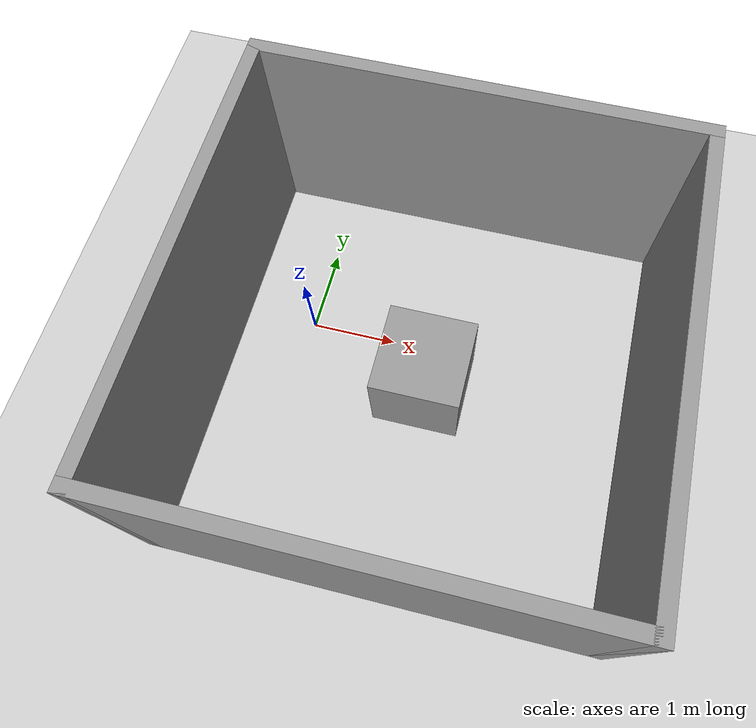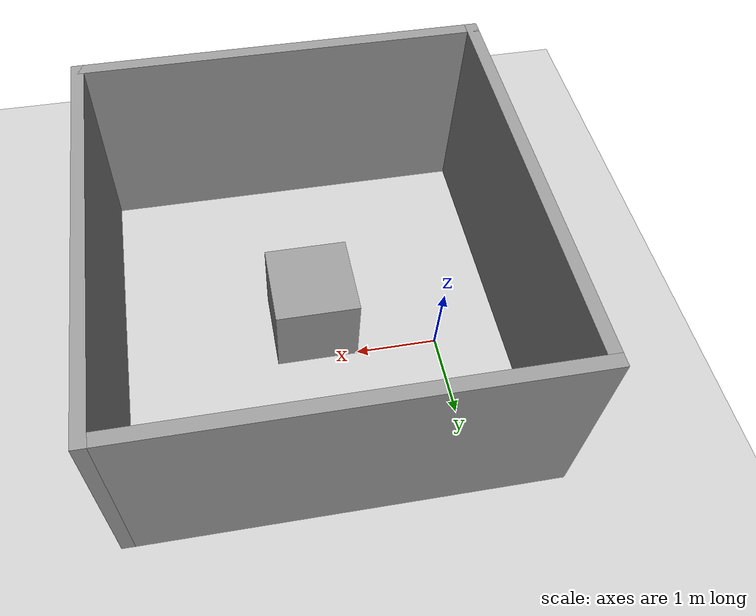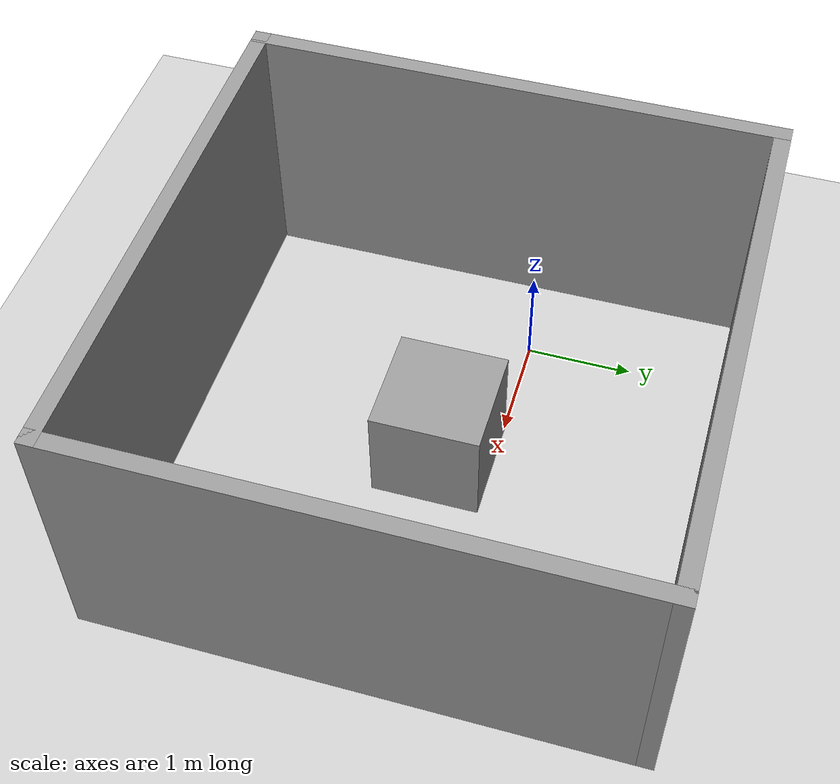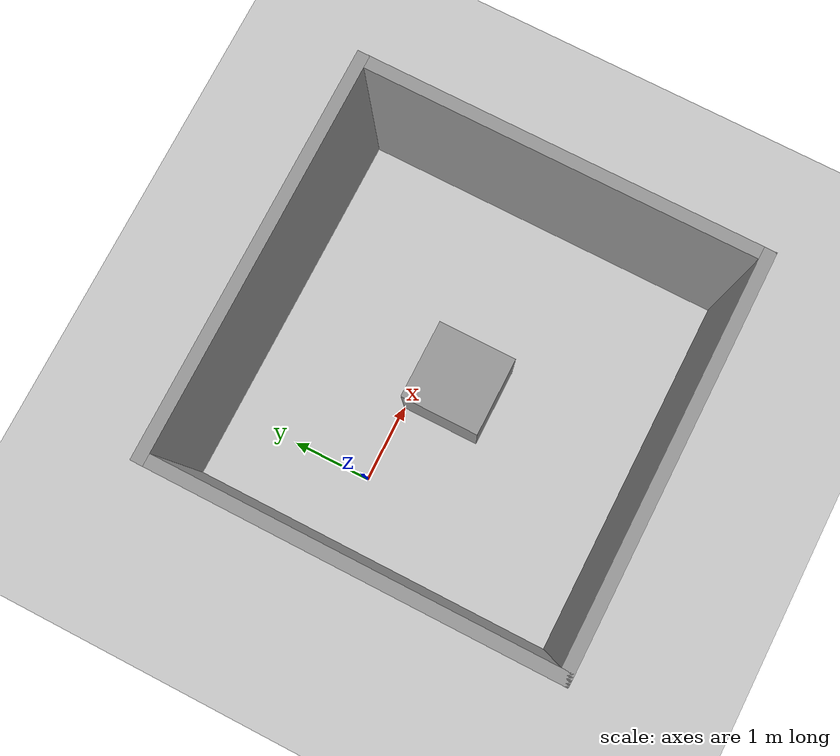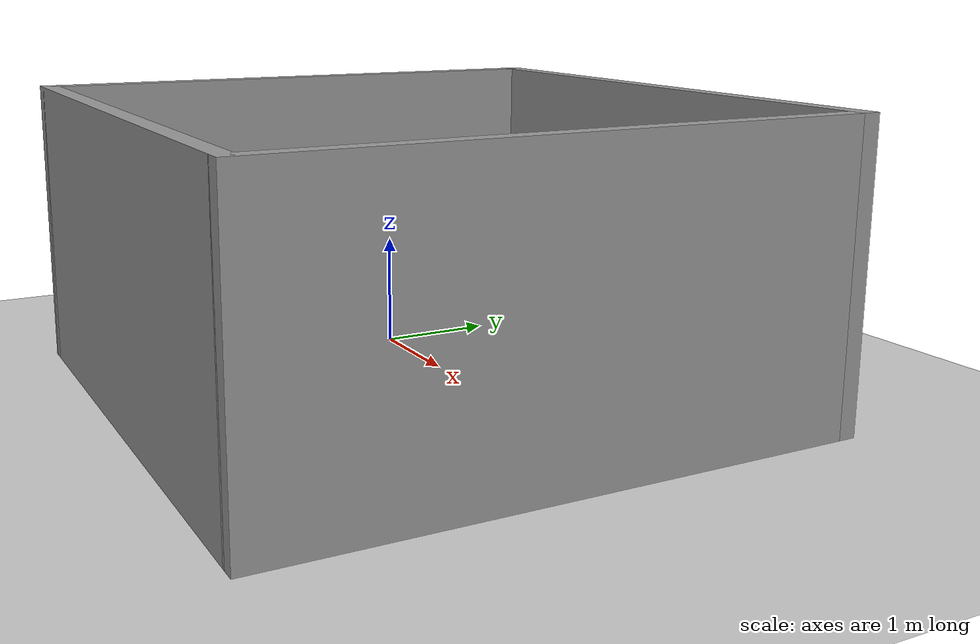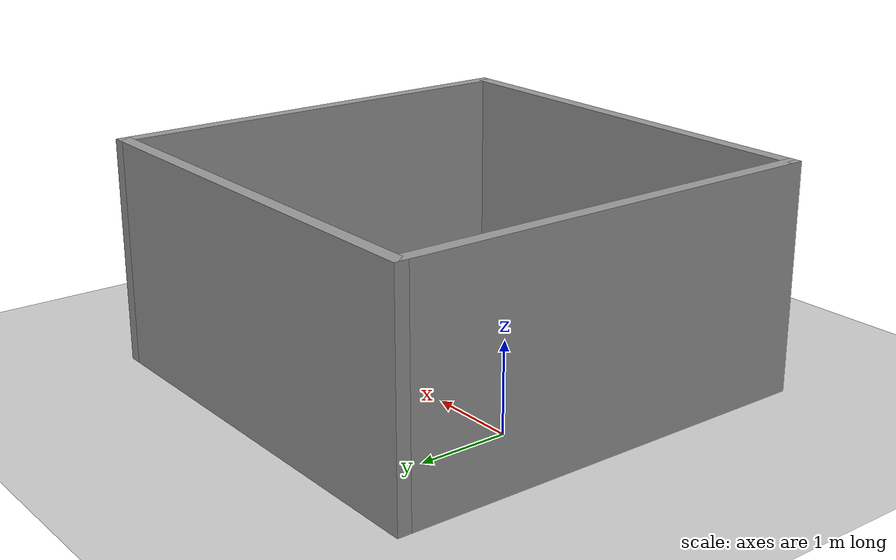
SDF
<sdf version="1.6">
 <world name="default">
  <light name="sun" type="directional">
   <pose>0 0 10 0 -0 0</pose>
   <diffuse>0.8 0.8 0.8 1</diffuse>
   <specular>0.1 0.1 0.1 1</specular>
   <attenuation>
    <range>1000</range>
    <constant>0.9</constant>
    <linear>0.01</linear>
    <quadratic>0.001</quadratic>
   </attenuation>
   <direction>-0.5 0.5 -1</direction>
  </light>
  <model name="ground_plane">
   <static>1</static>
   <link name="link">
    <collision name="collision">
     <geometry><plane><normal>0 0 1</normal><size>100 100</size></plane></geometry>
     <surface><friction><ode><mu>100</mu><mu2>50</mu2></ode></friction></surface>
    </collision>
    <visual name="visual">
     <cast_shadows>0</cast_shadows>
     <geometry><plane><normal>0 0 1</normal><size>100 100</size></plane></geometry>
     <material>
      <script><uri>file://media/materials/scripts/gazebo.material</uri><name>Gazebo/Grey</name></script>
     </material>
    </visual>
   </link>
  </model>
  <gravity>0 0 -9.8</gravity>
  <magnetic_field>6e-06 2.3e-05 -4.2e-05</magnetic_field>
  <atmosphere type="adiabatic"/>
  <physics name="default_physics" default="0" type="ode">
   <max_step_size>0.001</max_step_size>
   <real_time_factor>1</real_time_factor>
   <real_time_update_rate>1000</real_time_update_rate>
  </physics>
  <scene><ambient>0.4 0.4 0.4 1</ambient><background>0.7 0.7 0.7 1</background><shadows>1</shadows></scene>
  <spherical_coordinates>
   <surface_model>EARTH_WGS84</surface_model>
   <latitude_deg>0</latitude_deg>
   <longitude_deg>0</longitude_deg>
   <elevation>0</elevation>
   <heading_deg>0</heading_deg>
  </spherical_coordinates>
  <model name="MyRoom">
   <link name="link_0">
    <pose>0 0 0.25 0 -0 0</pose>
    <inertial>
     <mass>1</mass>
     <inertia>
      <ixx>0.166667</ixx>
      <ixy>0</ixy>
      <ixz>0</ixz>
      <iyy>0.166667</iyy>
      <iyz>0</iyz>
      <izz>0.166667</izz>
     </inertia>
    </inertial>
    <visual name="visual">
     <geometry><box><size>1 1 1</size></box></geometry>
     <material>
      <lighting>1</lighting>
      <script><uri>file://media/materials/scripts/gazebo.material</uri><name>Gazebo/Grey</name></script>
      <ambient>0.3 0.3 0.3 1</ambient>
      <diffuse>0.7 0.7 0.7 1</diffuse>
      <specular>0.01 0.01 0.01 1</specular>
      <emissive>0 0 0 1</emissive>
     </material>
    </visual>
    <collision name="collision">
     <geometry><box><size>1 1 1</size></box></geometry>
     <surface>
      <friction>
       <ode><mu>1</mu><mu2>1</mu2><fdir1>0 0 0</fdir1><slip1>0</slip1><slip2>0</slip2></ode>
       <torsional>
        <coefficient>1</coefficient>
        <patch_radius>0</patch_radius>
        <surface_radius>0</surface_radius>
        <use_patch_radius>1</use_patch_radius>
        <ode><slip>0</slip></ode>
       </torsional>
      </friction>
      <bounce><restitution_coefficient>0</restitution_coefficient><threshold>1e+06</threshold></bounce>
      <contact>
       <collide_without_contact>0</collide_without_contact>
       <collide_without_contact_bitmask>1</collide_without_contact_bitmask>
       <collide_bitmask>1</collide_bitmask>
       <ode>
        <soft_cfm>0</soft_cfm>
        <soft_erp>0.2</soft_erp>
        <kp>1e+13</kp>
        <kd>1</kd>
        <max_vel>0.01</max_vel>
        <min_depth>0</min_depth>
       </ode>
       <bullet>
        <split_impulse>1</split_impulse>
        <split_impulse_penetration_threshold>-0.01</split_impulse_penetration_threshold>
        <soft_cfm>0</soft_cfm>
        <soft_erp>0.2</soft_erp>
        <kp>1e+13</kp>
        <kd>1</kd>
       </bullet>
      </contact>
     </surface>
    </collision>
   </link>
   <model name="Room">
    <pose>0 0 -0.25 0 -0 0</pose>
    <link name="Wall_10">
     <collision name="Wall_10_Collision">
      <geometry><box><size>5 0.15 2.5</size></box></geometry>
      <pose>0 0 1.25 0 -0 0</pose>
     </collision>
     <visual name="Wall_10_Visual">
      <pose>0 0 1.25 0 -0 0</pose>
      <geometry><box><size>5 0.15 2.5</size></box></geometry>
      <material>
       <script><uri>file://media/materials/scripts/gazebo.material</uri><name>Gazebo/Grey</name></script>
       <ambient>1 1 1 1</ambient>
      </material>
     </visual>
     <pose>2.425 0 0 0 -0 1.5708</pose>
    </link>
    <link name="Wall_11">
     <collision name="Wall_11_Collision">
      <geometry><box><size>5 0.15 2.5</size></box></geometry>
      <pose>0 0 1.25 0 -0 0</pose>
     </collision>
     <visual name="Wall_11_Visual">
      <pose>0 0 1.25 0 -0 0</pose>
      <geometry><box><size>5 0.15 2.5</size></box></geometry>
      <material>
       <script><uri>file://media/materials/scripts/gazebo.material</uri><name>Gazebo/Grey</name></script>
       <ambient>1 1 1 1</ambient>
      </material>
     </visual>
     <pose>0 2.425 0 0 -0 3.14159</pose>
    </link>
    <link name="Wall_7">
     <collision name="Wall_7_Collision">
      <geometry><box><size>5 0.15 2.5</size></box></geometry>
      <pose>0 0 1.25 0 -0 0</pose>
     </collision>
     <visual name="Wall_7_Visual">
      <pose>0 0 1.25 0 -0 0</pose>
      <geometry><box><size>5 0.15 2.5</size></box></geometry>
      <material>
       <script><uri>file://media/materials/scripts/gazebo.material</uri><name>Gazebo/Grey</name></script>
       <ambient>1 1 1 1</ambient>
      </material>
     </visual>
     <pose>-2.425 0 0 0 0 -1.5708</pose>
    </link>
    <link name="Wall_8">
     <collision name="Wall_8_Collision">
      <geometry><box><size>5 0.15 2.5</size></box></geometry>
      <pose>0 0 1.25 0 -0 0</pose>
     </collision>
     <visual name="Wall_8_Visual">
      <pose>0 0 1.25 0 -0 0</pose>
      <geometry><box><size>5 0.15 2.5</size></box></geometry>
      <material>
       <script><uri>file://media/materials/scripts/gazebo.material</uri><name>Gazebo/Grey</name></script>
       <ambient>1 1 1 1</ambient>
      </material>
     </visual>
     <pose>0 -2.425 0 0 -0 0</pose>
    </link>
    <static>1</static>
   </model>
   <static>0</static>
   <pose>1.50078 -0.492463 0.25 0 -0 0</pose>
  </model>
 </world>
</sdf>
